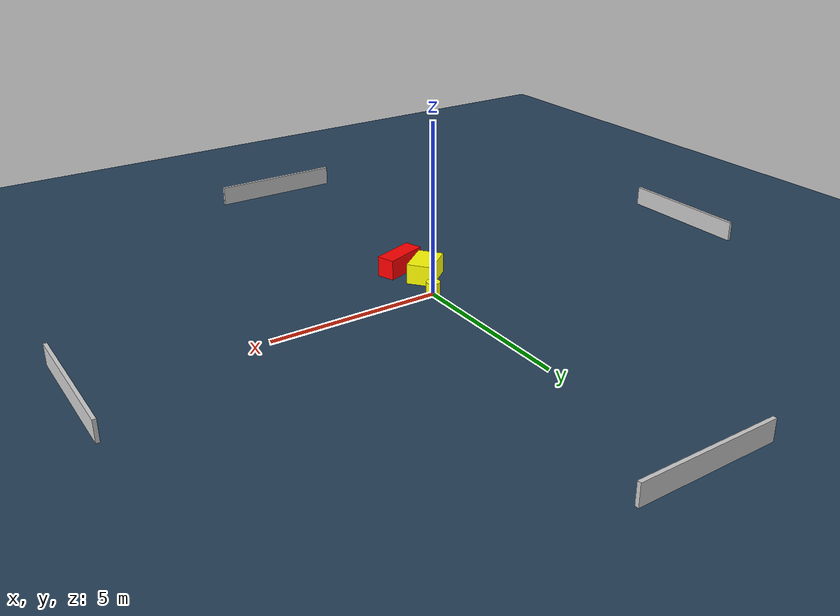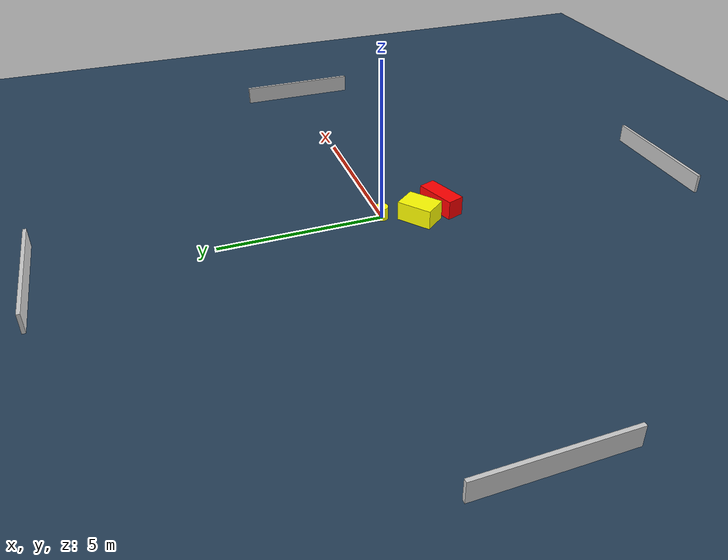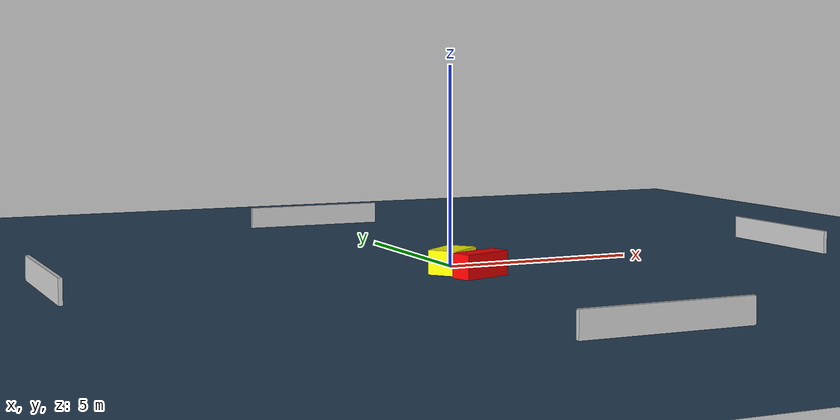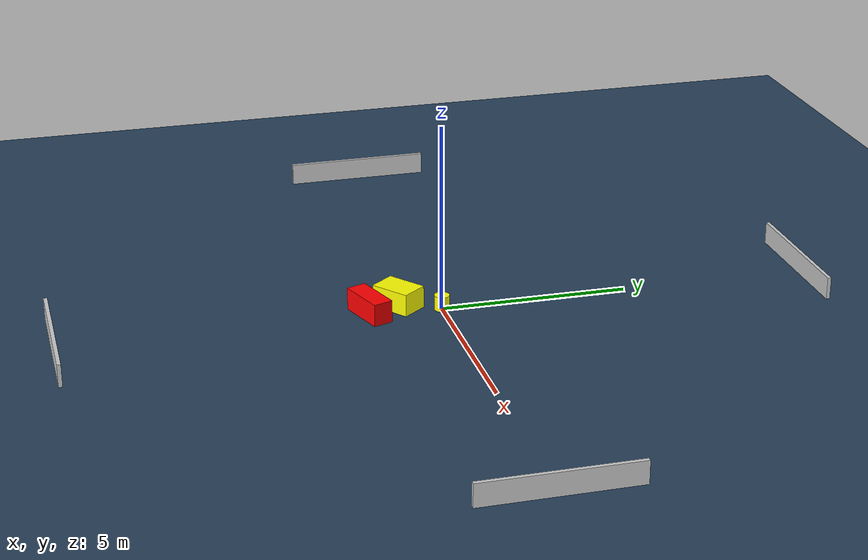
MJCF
<?xml version="1.0" ?>
<mujoco model="generated_environment">
  <option timestep="0.01" integrator="RK4" cone="elliptic"/>
  <default>
    <geom density="1"/>
  </default>
  <asset>
    <texture builtin="gradient" height="3072" name="skybox" rgb1="0.3 0.5 0.7" rgb2="0 0 0" type="skybox" width="512"/>
    <texture builtin="checker" height="300" name="groundplane" rgb1="0.2 0.3 0.4" rgb2="0.1 0.2 0.3" type="2d" width="300"/>
    <material name="groundplane" reflectance="0.2" texrepeat="5 5" texture="groundplane"/>
  </asset>
  <worldbody>
    <light dir="0 0 -1" directional="true" pos="0 0 1.5"/>
    <geom condim="3" friction="0.5 0.005 0.001" material="groundplane" name="floor" pos="0 0 0" size="0 0 0.05" type="plane"/>
    <body name="walls">
      <geom name="wall_1" condim="4" pos="-10.0 0.0 0.3" rgba="0.800000011920929 0.800000011920929 0.800000011920929 1.0" size="0.05 2.0 0.3" type="box"/>
      <geom name="wall_2" condim="4" pos="10.0 0.0 0.3" rgba="0.800000011920929 0.800000011920929 0.800000011920929 1.0" size="0.05 2.0 0.3" type="box"/>
      <geom name="wall_3" condim="4" pos="0.0 -10.0 0.3" rgba="0.800000011920929 0.800000011920929 0.800000011920929 1.0" size="2.0 0.05 0.3" type="box"/>
      <geom name="wall_4" condim="4" pos="0.0 10.0 0.3" rgba="0.800000011920929 0.800000011920929 0.800000011920929 1.0" size="2.0 0.05 0.3" type="box"/>
    </body>
    <body name="robot">
      <joint name="joint_x" type="slide" pos="0 0 0" axis="1 0 0"/>
      <joint name="joint_y" type="slide" pos="0 0 0" axis="0 1 0"/>
      <geom name="robot" type="cylinder" pos="0.0 0.0 0.2" size="0.2 0.2 0.0" mass="5.0" friction="1.0 0.005 0.0001" condim="4" rgba="1.0 1.0 0.0 1.0"/>
    </body>
    <body name="obstacle_1_movable">
      <geom name="obstacle_1_movable" condim="4" pos="-0.4357768848551931 -1.0614125597095108 0.3" euler="0 0 38.254255462169866" friction="0.0 0.005 0.001" rgba="1.0 1.0 0.0 1.0" size="0.5467421306484286 0.3771659508238334 0.3" type="box" mass="0.1"/>
      <joint type="free"/>
    </body>
    <body name="obstacle_2_static">
      <geom name="obstacle_2_static" condim="4" pos="-0.08993849646126492 -1.9060139632527173 0.3" euler="0 0 199.19268928956575" friction="0.0 0.005 0.001" rgba="1.0 0.0 0.0 1.0" size="0.659356521692666 0.2682451699472373 0.3" type="box"/>
    </body>
  </worldbody>
  <actuator>
    <motor name="actuator_x" joint="joint_x" gear="1" ctrlrange="-1 1"/>
    <motor name="actuator_y" joint="joint_y" gear="1" ctrlrange="-1 1"/>
  </actuator>
</mujoco>
